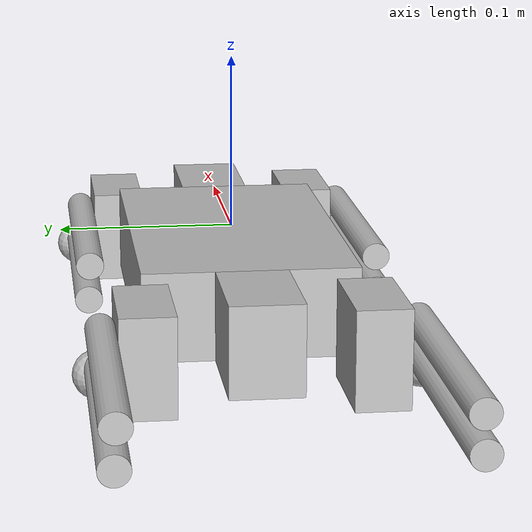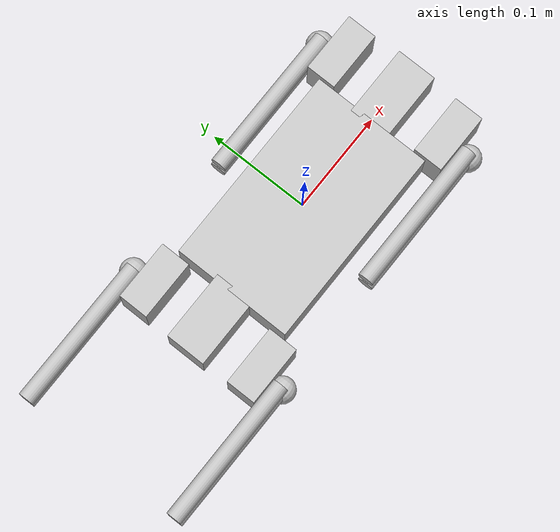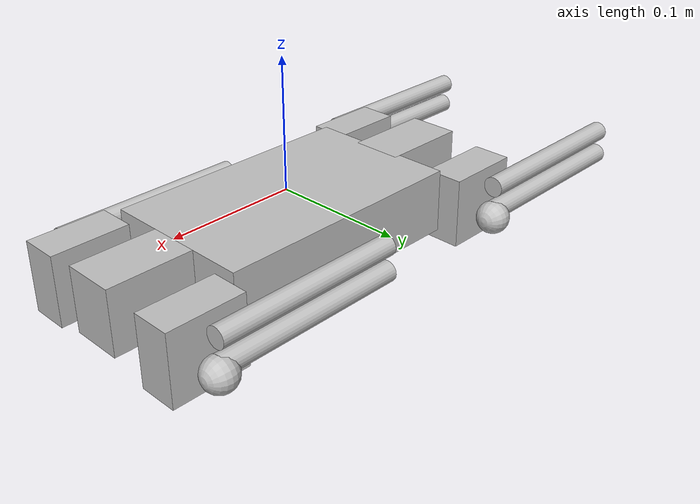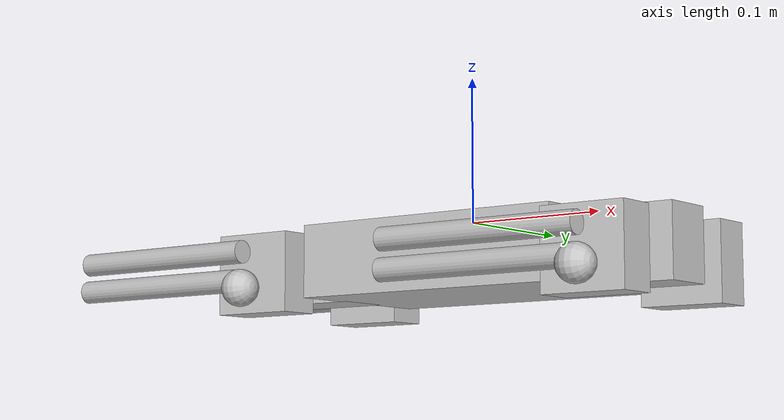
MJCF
<mujoco model="chitrak_description">
  <compiler angle="radian"/>

  <worldbody>
    <geom size="0.1 0.06 0.025" pos="0 0 -0.025" type="box" rgba="0.752941 0.752941 0.752941 1"/>
    <geom size="0.035 0.02 0.025" pos="-0.13 0 -0.025" type="box" rgba="0.752941 0.752941 0.752941 1"/>
    <geom size="0.035 0.02 0.025" pos="0.13 0 -0.025" type="box" rgba="0.752941 0.752941 0.752941 1"/>
    <body name="fr_hip_link" pos="0.1034 -0.0557689 -0.018465">
      <inertial pos="0.0322826 -0.000429461 -0.0140006" quat="0.501642 0.496046 0.503748 0.49853" mass="0.108649" diaginertia="4.61686e-05 4.28729e-05 2.69799e-05"/>
      <joint name="fr_hip_roll_joint" pos="0 0 0" axis="1 0 0" range="-1.57 1.57" actuatorfrcrange="-2.5 2.5"/>
      <geom size="0.03 0.015 0.0275" pos="0.03 -0.005 -0.014" type="box" rgba="0.752941 0.752941 0.752941 1"/>
      <body name="fr_thigh_link" pos="0.022055 -0.021 0.00041">
        <inertial pos="-0.0626115 -0.00685326 5.47714e-08" quat="0.503713 0.503724 0.496248 0.496259" mass="0.0357823" diaginertia="1.62922e-05 1.5657e-05 1.82581e-06"/>
        <joint name="fr_hip_pitch_joint" pos="0 0 0" axis="0 -1 0" range="0 3.14" actuatorfrcrange="-2.5 2.5"/>
        <geom size="0.008 0.075" pos="-0.065 -0.007 0" quat="0.707388 0 -0.706825 0" type="cylinder" rgba="0.752941 0.752941 0.752941 1"/>
        <body name="fr_calf_link" pos="-0.13 5e-05 0">
          <inertial pos="0.0724501 -0.00768914 -0.0161896" quat="0.181537 0.744111 0.262615 0.586836" mass="0.0489997" diaginertia="3.66748e-05 3.59051e-05 5.09399e-06"/>
          <joint name="fr_knee_joint" pos="0 0 0" axis="0 -1 0" range="-3.14 0" actuatorfrcrange="-2.5 2.5"/>
          <geom size="0.008 0.075" pos="0.065 -0.008 -0.02" quat="0.707388 0 0.706825 0" type="cylinder" rgba="0.752941 0.752941 0.752941 1"/>
          <geom size="0.013" pos="0.14 -0.009 -0.025" quat="0.707388 0 0.706825 0" rgba="0.752941 0.752941 0.752941 1"/>
        </body>
      </body>
    </body>
    <body name="fl_hip_link" pos="0.1034 0.0557689 -0.018465">
      <inertial pos="0.0319882 0.000410061 -0.0140991" quat="0.501243 0.501038 0.49882 0.498893" mass="0.108543" diaginertia="4.61468e-05 4.28245e-05 2.69788e-05"/>
      <joint name="fl_hip_roll_joint" pos="0 0 0" axis="1 0 0" range="-1.57 1.57" actuatorfrcrange="-2.5 2.5"/>
      <geom size="0.03 0.015 0.0275" pos="0.03 0.005 -0.014" type="box" rgba="0.752941 0.752941 0.752941 1"/>
      <body name="fl_thigh_link" pos="0.021575 0.021 0">
        <inertial pos="-0.062611 0.0068533 -5.4771e-08" quat="0.496248 0.496259 0.503713 0.503724" mass="0.035782" diaginertia="1.62922e-05 1.5657e-05 1.82578e-06"/>
        <joint name="fl_hip_pitch_joint" pos="0 0 0" axis="0 1 0" range="-3.14 0" actuatorfrcrange="-2.5 2.5"/>
        <geom size="0.008 0.075" pos="-0.065 0.007 0" quat="0.707388 0 -0.706825 0" type="cylinder" rgba="0.75294 0.75294 0.75294 1"/>
        <body name="fl_calf_link" pos="-0.13 -5e-05 0">
          <inertial pos="0.0724809 0.00768626 -0.0162002" quat="-0.181543 0.74392 -0.262765 0.58701" mass="0.0489855" diaginertia="3.66302e-05 3.58563e-05 5.08653e-06"/>
          <joint name="fl_knee_joint" pos="0 0 0" axis="0 1 0" range="0 3.14" actuatorfrcrange="-2.5 2.5"/>
          <geom size="0.008 0.075" pos="0.065 0.008 -0.02" quat="0.707388 0 0.706825 0" type="cylinder" rgba="0.752941 0.752941 0.752941 1"/>
          <geom size="0.013" pos="0.14 0.009 -0.025" quat="0.707388 0 0.706825 0" rgba="0.752941 0.752941 0.752941 1"/>
        </body>
      </body>
    </body>
    <body name="br_hip_link" pos="-0.1034 -0.0557689 -0.018465">
      <inertial pos="-0.0321355 -0.000410061 -0.0139732" quat="0.501038 0.501243 0.498893 0.49882" mass="0.108543" diaginertia="4.61468e-05 4.28245e-05 2.69788e-05"/>
      <joint name="br_hip_roll_joint" pos="0 0 0" axis="-1 0 0" range="-1.57 1.57" actuatorfrcrange="-2.5 2.5"/>
      <geom size="0.03 0.015 0.0275" pos="-0.03 -0.005 -0.014" type="box" rgba="0.752941 0.752941 0.752941 1"/>
      <body name="br_thigh_link" pos="-0.041945 -0.021 0.00041">
        <inertial pos="-0.0626115 -0.00685326 5.47714e-08" quat="0.503713 0.503724 0.496248 0.496259" mass="0.0357823" diaginertia="1.62922e-05 1.5657e-05 1.82581e-06"/>
        <joint name="br_hip_pitch_joint" pos="0 0 0" axis="0 -1 0" range="0 3.14" actuatorfrcrange="-2.5 2.5"/>
        <geom size="0.008 0.075" pos="-0.065 -0.007 0" quat="0.707388 0 0.706825 0" type="cylinder" rgba="0.752941 0.752941 0.752941 1"/>
        <body name="br_calf_link" pos="-0.13 5e-05 0">
          <inertial pos="0.0724501 -0.00768914 -0.0161896" quat="0.181537 0.744111 0.262615 0.586836" mass="0.0489997" diaginertia="3.66748e-05 3.59051e-05 5.09399e-06"/>
          <joint name="br_knee_joint" pos="0 0 0" axis="0 -1 0" range="-3.14 0" actuatorfrcrange="-2.5 2.5"/>
          <geom size="0.008 0.075" pos="0.065 -0.008 -0.02" quat="0.707388 0 0.706825 0" type="cylinder" rgba="0.752941 0.752941 0.752941 1"/>
          <geom size="0.013" pos="0.14 -0.009 -0.025" quat="0.707388 0 0.706825 0" rgba="0.752941 0.752941 0.752941 1"/>
        </body>
      </body>
    </body>
    <body name="bl_hip_link" pos="-0.1034 0.055769 -0.018465">
      <inertial pos="-0.0319882 0.000429461 -0.0140006" quat="0.496046 0.501642 0.49853 0.503748" mass="0.108649" diaginertia="4.61686e-05 4.28729e-05 2.69799e-05"/>
      <joint name="bl_hip_roll_joint" pos="0 0 0" axis="-1 0 0" range="-1.57 1.57" actuatorfrcrange="-2.5 2.5"/>
      <geom size="0.03 0.015 0.0275" pos="-0.03 0.005 -0.014" type="box" rgba="0.752941 0.752941 0.752941 1"/>
      <body name="bl_thigh_link" pos="-0.041945 0.021 0.00041">
        <inertial pos="-0.0626115 0.00685326 -5.47714e-08" quat="0.496248 0.496259 0.503713 0.503724" mass="0.0357823" diaginertia="1.62922e-05 1.5657e-05 1.82581e-06"/>
        <joint name="bl_hip_pitch_joint" pos="0 0 0" axis="0 1 0" range="-3.14 0" actuatorfrcrange="-2.5 2.5"/>
        <geom size="0.008 0.075" pos="-0.065 0.007 0" quat="0.707388 0 -0.706825 0" type="cylinder" rgba="0.752941 0.752941 0.752941 1"/>
        <body name="bl_calf_link" pos="-0.13 -5e-05 0">
          <inertial pos="0.0724809 0.00768626 -0.0162002" quat="-0.181543 0.74392 -0.262765 0.58701" mass="0.0489855" diaginertia="3.66302e-05 3.58563e-05 5.08653e-06"/>
          <joint name="bl_knee_joint" pos="0 0 0" axis="0 1 0" range="0 3.14" actuatorfrcrange="-2.5 2.5"/>
          <geom size="0.008 0.075" pos="0.065 0.008 -0.02" quat="0.707388 0 0.706825 0" type="cylinder" rgba="0.752941 0.752941 0.752941 1"/>
          <geom size="0.013" pos="0.14 0.009 -0.025" quat="0.707388 0 0.706825 0" rgba="0.752941 0.752941 0.752941 1"/>
        </body>
      </body>
    </body>
  </worldbody>
</mujoco>
